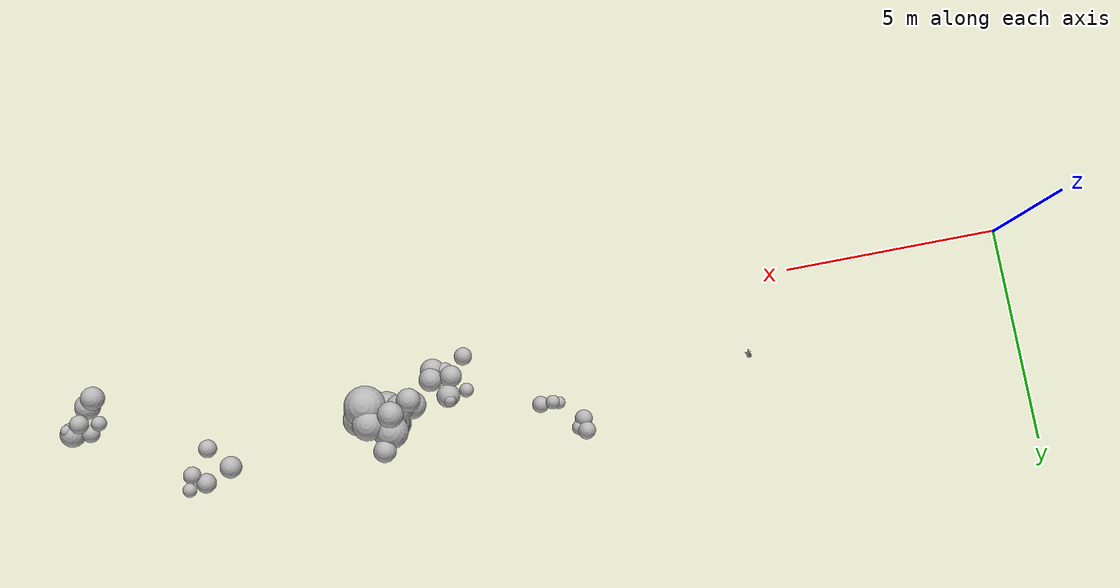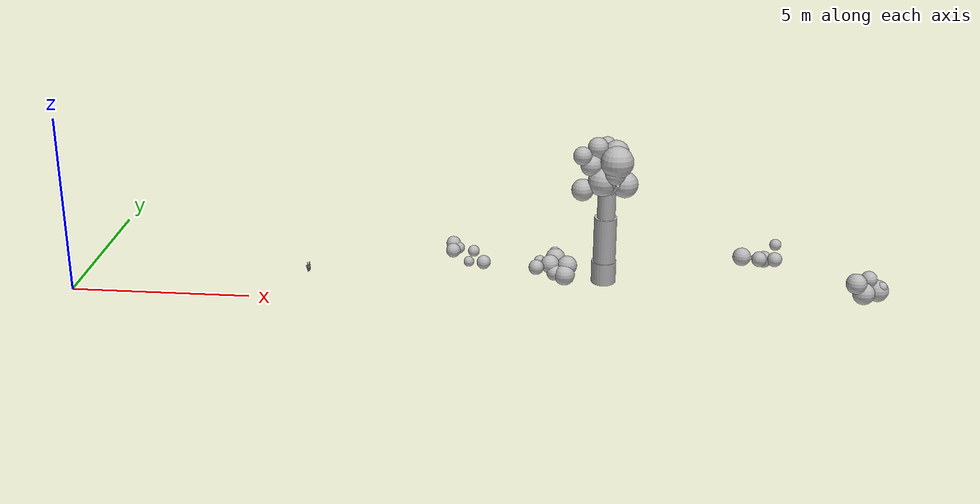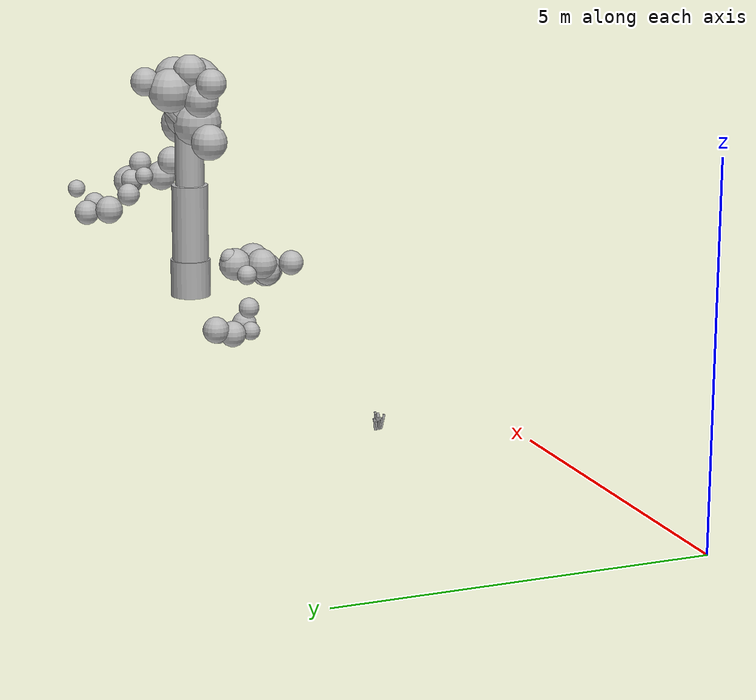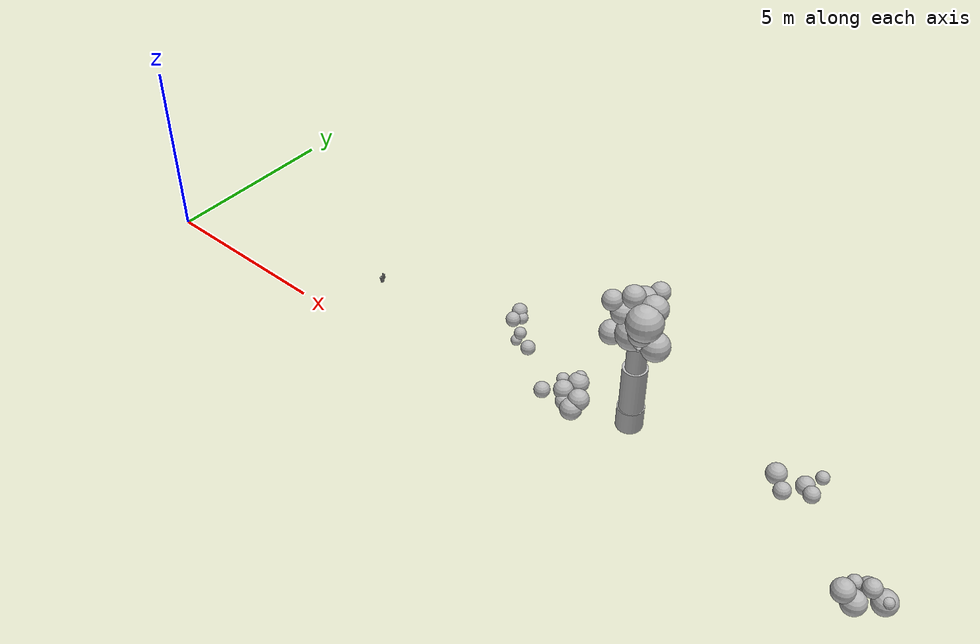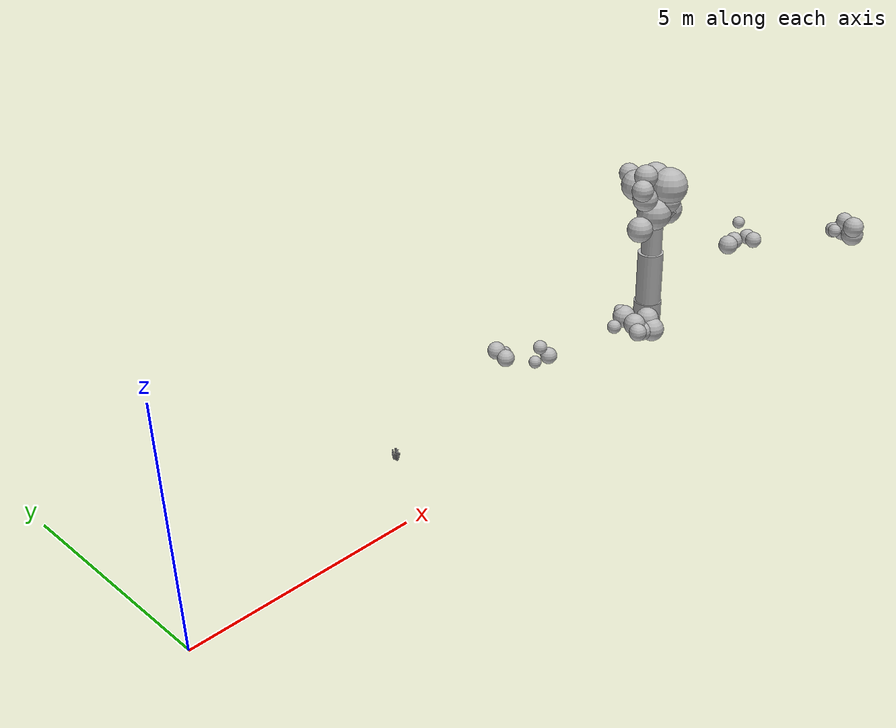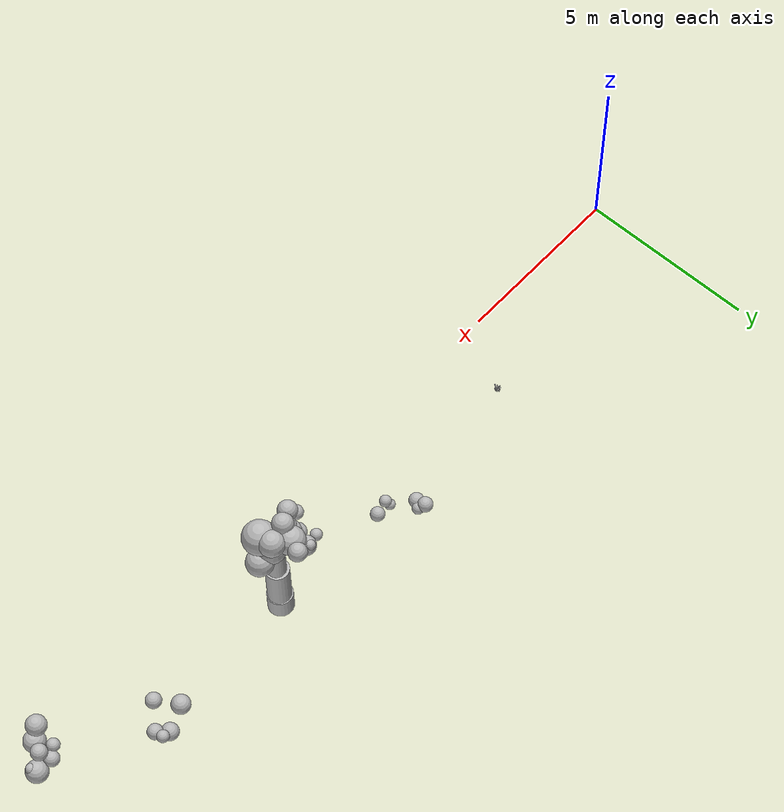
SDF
<sdf version="1.6">
 <world name="default">
  <model name="bush_18">
   <static>true</static>
   <pose>14.7406 1.8551 0 0 0 0</pose>
   <link name="trunk">
    <pose>0 0 1.5000 0 0 0</pose>
    <collision name="trunk_c">
     <geometry><cylinder><radius>0.3500</radius><length>3.0000</length></cylinder></geometry>
    </collision>
   </link>
   <link name="trunk_v0">
    <pose>0.0011 -0.0007 0.3100 0 0 0</pose>
    <visual name="trunk_v0_v">
     <geometry><cylinder><radius>0.3448</radius><length>0.6448</length></cylinder></geometry>
     <material>
      <script>
       <uri>model://bushfire/materials/scripts</uri>
       <uri>model://bushfire/materials/textures</uri>
       <name>Bushfire/CharBark</name>
      </script>
     </material>
    </visual>
   </link>
   <link name="trunk_v1">
    <pose>0.0080 -0.0047 1.2700 0 0 0</pose>
    <visual name="trunk_v1_v">
     <geometry><cylinder><radius>0.3150</radius><length>1.3520</length></cylinder></geometry>
     <material>
      <script>
       <uri>model://bushfire/materials/scripts</uri>
       <uri>model://bushfire/materials/textures</uri>
       <name>Bushfire/BarkSmooth</name>
      </script>
     </material>
    </visual>
   </link>
   <link name="trunk_v2">
    <pose>0.0203 -0.0120 2.4600 0 0 0</pose>
    <visual name="trunk_v2_v">
     <geometry><cylinder><radius>0.2520</radius><length>1.1232</length></cylinder></geometry>
     <material>
      <script>
       <uri>model://bushfire/materials/scripts</uri>
       <uri>model://bushfire/materials/textures</uri>
       <name>Bushfire/BarkSmooth</name>
      </script>
     </material>
    </visual>
   </link>
   <link name="branch0">
    <pose>0.1504 -0.2131 2.7496 0 0.7136 5.3271</pose>
    <visual name="branch0_v">
     <geometry><cylinder><radius>0.0507</radius><length>0.7969</length></cylinder></geometry>
     <material>
      <script>
       <uri>model://bushfire/materials/scripts</uri>
       <uri>model://bushfire/materials/textures</uri>
       <name>Bushfire/BarkSmooth</name>
      </script>
     </material>
    </visual>
   </link>
   <link name="branch1">
    <pose>0.3432 0.0026 2.7562 0 0.9896 6.2909</pose>
    <visual name="branch1_v">
     <geometry><cylinder><radius>0.0400</radius><length>0.8213</length></cylinder></geometry>
     <material>
      <script>
       <uri>model://bushfire/materials/scripts</uri>
       <uri>model://bushfire/materials/textures</uri>
       <name>Bushfire/BarkSmooth</name>
      </script>
     </material>
    </visual>
   </link>
   <link name="branch2">
    <pose>-0.1122 0.2481 3.0792 0 0.7819 8.2786</pose>
    <visual name="branch2_v">
     <geometry><cylinder><radius>0.0503</radius><length>0.7729</length></cylinder></geometry>
     <material>
      <script>
       <uri>model://bushfire/materials/scripts</uri>
       <uri>model://bushfire/materials/textures</uri>
       <name>Bushfire/BarkSmooth</name>
      </script>
     </material>
    </visual>
   </link>
   <link name="branch3">
    <pose>-0.2385 -0.0498 2.7622 0 1.0063 9.6308</pose>
    <visual name="branch3_v">
     <geometry><cylinder><radius>0.0340</radius><length>0.5768</length></cylinder></geometry>
     <material>
      <script>
       <uri>model://bushfire/materials/scripts</uri>
       <uri>model://bushfire/materials/textures</uri>
       <name>Bushfire/BarkSmooth</name>
      </script>
     </material>
    </visual>
   </link>
   <link name="foliage0">
    <pose>0.1201 -0.0437 3.1649 0 0 0</pose>
    <visual name="foliage0_v">
     <geometry><sphere><radius>0.4239</radius></sphere></geometry>
     <material>
      <script>
       <uri>model://bushfire/materials/scripts</uri>
       <uri>model://bushfire/materials/textures</uri>
       <name>Bushfire/Foliage2</name>
      </script>
     </material>
    </visual>
   </link>
   <link name="foliage1">
    <pose>0.5037 -0.0432 2.9428 0 0 0</pose>
    <visual name="foliage1_v">
     <geometry><sphere><radius>0.3649</radius></sphere></geometry>
     <material>
      <script>
       <uri>model://bushfire/materials/scripts</uri>
       <uri>model://bushfire/materials/textures</uri>
       <name>Bushfire/Foliage2</name>
      </script>
     </material>
    </visual>
   </link>
   <link name="foliage2">
    <pose>-0.1835 0.3823 3.6397 0 0 0</pose>
    <visual name="foliage2_v">
     <geometry><sphere><radius>0.3778</radius></sphere></geometry>
     <material>
      <script>
       <uri>model://bushfire/materials/scripts</uri>
       <uri>model://bushfire/materials/textures</uri>
       <name>Bushfire/Foliage2</name>
      </script>
     </material>
    </visual>
   </link>
   <link name="foliage3">
    <pose>-0.6511 -0.1492 2.7924 0 0 0</pose>
    <visual name="foliage3_v">
     <geometry><sphere><radius>0.3087</radius></sphere></geometry>
     <material>
      <script>
       <uri>model://bushfire/materials/scripts</uri>
       <uri>model://bushfire/materials/textures</uri>
       <name>Bushfire/Foliage0</name>
      </script>
     </material>
    </visual>
   </link>
   <link name="foliage4">
    <pose>0.2680 -0.2303 3.6517 0 0 0</pose>
    <visual name="foliage4_v">
     <geometry><sphere><radius>0.4530</radius></sphere></geometry>
     <material>
      <script>
       <uri>model://bushfire/materials/scripts</uri>
       <uri>model://bushfire/materials/textures</uri>
       <name>Bushfire/Foliage1</name>
      </script>
     </material>
    </visual>
   </link>
   <link name="foliage5">
    <pose>0.2472 0.1643 3.8018 0 0 0</pose>
    <visual name="foliage5_v">
     <geometry><sphere><radius>0.3428</radius></sphere></geometry>
     <material>
      <script>
       <uri>model://bushfire/materials/scripts</uri>
       <uri>model://bushfire/materials/textures</uri>
       <name>Bushfire/Foliage2</name>
      </script>
     </material>
    </visual>
   </link>
   <link name="foliage6">
    <pose>-0.0073 0.7726 3.7870 0 0 0</pose>
    <visual name="foliage6_v">
     <geometry><sphere><radius>0.2453</radius></sphere></geometry>
     <material>
      <script>
       <uri>model://bushfire/materials/scripts</uri>
       <uri>model://bushfire/materials/textures</uri>
       <name>Bushfire/Foliage2</name>
      </script>
     </material>
    </visual>
   </link>
   <link name="foliage7">
    <pose>-0.6741 -0.1877 3.7956 0 0 0</pose>
    <visual name="foliage7_v">
     <geometry><sphere><radius>0.2587</radius></sphere></geometry>
     <material>
      <script>
       <uri>model://bushfire/materials/scripts</uri>
       <uri>model://bushfire/materials/textures</uri>
       <name>Bushfire/Foliage1</name>
      </script>
     </material>
    </visual>
   </link>
   <link name="foliage8">
    <pose>0.0270 0.0278 3.0860 0 0 0</pose>
    <visual name="foliage8_v">
     <geometry><sphere><radius>0.2529</radius></sphere></geometry>
     <material>
      <script>
       <uri>model://bushfire/materials/scripts</uri>
       <uri>model://bushfire/materials/textures</uri>
       <name>Bushfire/Foliage1</name>
      </script>
     </material>
    </visual>
   </link>
   <link name="foliage9">
    <pose>0.2157 -0.2806 3.3196 0 0 0</pose>
    <visual name="foliage9_v">
     <geometry><sphere><radius>0.2981</radius></sphere></geometry>
     <material>
      <script>
       <uri>model://bushfire/materials/scripts</uri>
       <uri>model://bushfire/materials/textures</uri>
       <name>Bushfire/Foliage1</name>
      </script>
     </material>
    </visual>
   </link>
   <link name="foliage10">
    <pose>-0.2627 0.0566 3.9698 0 0 0</pose>
    <visual name="foliage10_v">
     <geometry><sphere><radius>0.2811</radius></sphere></geometry>
     <material>
      <script>
       <uri>model://bushfire/materials/scripts</uri>
       <uri>model://bushfire/materials/textures</uri>
       <name>Bushfire/Foliage2</name>
      </script>
     </material>
    </visual>
   </link>
   <link name="foliage11">
    <pose>-0.4304 -0.0814 3.4949 0 0 0</pose>
    <visual name="foliage11_v">
     <geometry><sphere><radius>0.3008</radius></sphere></geometry>
     <material>
      <script>
       <uri>model://bushfire/materials/scripts</uri>
       <uri>model://bushfire/materials/textures</uri>
       <name>Bushfire/Foliage2</name>
      </script>
     </material>
    </visual>
   </link>
   <link name="foliage12">
    <pose>-0.1012 -0.1157 3.0447 0 0 0</pose>
    <visual name="foliage12_v">
     <geometry><sphere><radius>0.4181</radius></sphere></geometry>
     <material>
      <script>
       <uri>model://bushfire/materials/scripts</uri>
       <uri>model://bushfire/materials/textures</uri>
       <name>Bushfire/Foliage2</name>
      </script>
     </material>
    </visual>
   </link>
  </model>
  <model name="scrub">
   <static>true</static>
   <link name="scrub41_0">
    <pose>12.9604 1.4420 0.7146 0 0 0</pose>
    <visual name="scrub41_0_v">
     <geometry><sphere><radius>0.1660</radius></sphere></geometry>
     <material>
      <script>
       <uri>model://bushfire/materials/scripts</uri>
       <uri>model://bushfire/materials/textures</uri>
       <name>Bushfire/Foliage0</name>
      </script>
     </material>
    </visual>
   </link>
   <link name="scrub41_1">
    <pose>13.3917 0.9271 0.6246 0 0 0</pose>
    <visual name="scrub41_1_v">
     <geometry><sphere><radius>0.2222</radius></sphere></geometry>
     <material>
      <script>
       <uri>model://bushfire/materials/scripts</uri>
       <uri>model://bushfire/materials/textures</uri>
       <name>Bushfire/Foliage0</name>
      </script>
     </material>
    </visual>
   </link>
   <link name="scrub41_2">
    <pose>13.3692 1.6061 0.9323 0 0 0</pose>
    <visual name="scrub41_2_v">
     <geometry><sphere><radius>0.1561</radius></sphere></geometry>
     <material>
      <script>
       <uri>model://bushfire/materials/scripts</uri>
       <uri>model://bushfire/materials/textures</uri>
       <name>Bushfire/Foliage0</name>
      </script>
     </material>
    </visual>
   </link>
   <link name="scrub41_3">
    <pose>13.7293 1.0621 0.7868 0 0 0</pose>
    <visual name="scrub41_3_v">
     <geometry><sphere><radius>0.2743</radius></sphere></geometry>
     <material>
      <script>
       <uri>model://bushfire/materials/scripts</uri>
       <uri>model://bushfire/materials/textures</uri>
       <name>Bushfire/Foliage1</name>
      </script>
     </material>
    </visual>
   </link>
   <link name="scrub41_4">
    <pose>13.3899 1.5025 0.8108 0 0 0</pose>
    <visual name="scrub41_4_v">
     <geometry><sphere><radius>0.2712</radius></sphere></geometry>
     <material>
      <script>
       <uri>model://bushfire/materials/scripts</uri>
       <uri>model://bushfire/materials/textures</uri>
       <name>Bushfire/Foliage0</name>
      </script>
     </material>
    </visual>
   </link>
   <link name="scrub41_5">
    <pose>13.6659 0.8487 0.5979 0 0 0</pose>
    <visual name="scrub41_5_v">
     <geometry><sphere><radius>0.2850</radius></sphere></geometry>
     <material>
      <script>
       <uri>model://bushfire/materials/scripts</uri>
       <uri>model://bushfire/materials/textures</uri>
       <name>Bushfire/Foliage1</name>
      </script>
     </material>
    </visual>
   </link>
   <link name="scrub41_6">
    <pose>13.2588 1.0722 0.8116 0 0 0</pose>
    <visual name="scrub41_6_v">
     <geometry><sphere><radius>0.2569</radius></sphere></geometry>
     <material>
      <script>
       <uri>model://bushfire/materials/scripts</uri>
       <uri>model://bushfire/materials/textures</uri>
       <name>Bushfire/Foliage1</name>
      </script>
     </material>
    </visual>
   </link>
   <link name="scrub41_7">
    <pose>12.8944 0.6761 0.8796 0 0 0</pose>
    <visual name="scrub41_7_v">
     <geometry><sphere><radius>0.2076</radius></sphere></geometry>
     <material>
      <script>
       <uri>model://bushfire/materials/scripts</uri>
       <uri>model://bushfire/materials/textures</uri>
       <name>Bushfire/Foliage2</name>
      </script>
     </material>
    </visual>
   </link>
   <link name="scrub43_0">
    <pose>10.5580 2.7658 0.4443 0 0 0</pose>
    <visual name="scrub43_0_v">
     <geometry><sphere><radius>0.1666</radius></sphere></geometry>
     <material>
      <script>
       <uri>model://bushfire/materials/scripts</uri>
       <uri>model://bushfire/materials/textures</uri>
       <name>Bushfire/Foliage0</name>
      </script>
     </material>
    </visual>
   </link>
   <link name="scrub43_1">
    <pose>10.3962 2.8638 0.5427 0 0 0</pose>
    <visual name="scrub43_1_v">
     <geometry><sphere><radius>0.2081</radius></sphere></geometry>
     <material>
      <script>
       <uri>model://bushfire/materials/scripts</uri>
       <uri>model://bushfire/materials/textures</uri>
       <name>Bushfire/Foliage1</name>
      </script>
     </material>
    </visual>
   </link>
   <link name="scrub43_2">
    <pose>11.3360 2.0655 0.3395 0 0 0</pose>
    <visual name="scrub43_2_v">
     <geometry><sphere><radius>0.1970</radius></sphere></geometry>
     <material>
      <script>
       <uri>model://bushfire/materials/scripts</uri>
       <uri>model://bushfire/materials/textures</uri>
       <name>Bushfire/Foliage0</name>
      </script>
     </material>
    </visual>
   </link>
   <link name="scrub43_3">
    <pose>10.4140 2.5766 0.4465 0 0 0</pose>
    <visual name="scrub43_3_v">
     <geometry><sphere><radius>0.2059</radius></sphere></geometry>
     <material>
      <script>
       <uri>model://bushfire/materials/scripts</uri>
       <uri>model://bushfire/materials/textures</uri>
       <name>Bushfire/Foliage0</name>
      </script>
     </material>
    </visual>
   </link>
   <link name="scrub43_4">
    <pose>10.9100 2.1033 0.3266 0 0 0</pose>
    <visual name="scrub43_4_v">
     <geometry><sphere><radius>0.1479</radius></sphere></geometry>
     <material>
      <script>
       <uri>model://bushfire/materials/scripts</uri>
       <uri>model://bushfire/materials/textures</uri>
       <name>Bushfire/Foliage0</name>
      </script>
     </material>
    </visual>
   </link>
   <link name="scrub43_5">
    <pose>11.0535 2.0822 0.6709 0 0 0</pose>
    <visual name="scrub43_5_v">
     <geometry><sphere><radius>0.1635</radius></sphere></geometry>
     <material>
      <script>
       <uri>model://bushfire/materials/scripts</uri>
       <uri>model://bushfire/materials/textures</uri>
       <name>Bushfire/Foliage0</name>
      </script>
     </material>
    </visual>
   </link>
   <link name="scrub47_0">
    <pose>19.5477 2.5419 0.9905 0 0 0</pose>
    <visual name="scrub47_0_v">
     <geometry><sphere><radius>0.1639</radius></sphere></geometry>
     <material>
      <script>
       <uri>model://bushfire/materials/scripts</uri>
       <uri>model://bushfire/materials/textures</uri>
       <name>Bushfire/Foliage1</name>
      </script>
     </material>
    </visual>
   </link>
   <link name="scrub47_1">
    <pose>19.5133 2.2040 0.6857 0 0 0</pose>
    <visual name="scrub47_1_v">
     <geometry><sphere><radius>0.2059</radius></sphere></geometry>
     <material>
      <script>
       <uri>model://bushfire/materials/scripts</uri>
       <uri>model://bushfire/materials/textures</uri>
       <name>Bushfire/Foliage0</name>
      </script>
     </material>
    </visual>
   </link>
   <link name="scrub47_2">
    <pose>18.5958 2.1848 0.7451 0 0 0</pose>
    <visual name="scrub47_2_v">
     <geometry><sphere><radius>0.2554</radius></sphere></geometry>
     <material>
      <script>
       <uri>model://bushfire/materials/scripts</uri>
       <uri>model://bushfire/materials/textures</uri>
       <name>Bushfire/Foliage1</name>
      </script>
     </material>
    </visual>
   </link>
   <link name="scrub47_3">
    <pose>19.0131 1.6790 0.9152 0 0 0</pose>
    <visual name="scrub47_3_v">
     <geometry><sphere><radius>0.2110</radius></sphere></geometry>
     <material>
      <script>
       <uri>model://bushfire/materials/scripts</uri>
       <uri>model://bushfire/materials/textures</uri>
       <name>Bushfire/Foliage1</name>
      </script>
     </material>
    </visual>
   </link>
   <link name="scrub47_4">
    <pose>19.2404 2.4343 0.5824 0 0 0</pose>
    <visual name="scrub47_4_v">
     <geometry><sphere><radius>0.2312</radius></sphere></geometry>
     <material>
      <script>
       <uri>model://bushfire/materials/scripts</uri>
       <uri>model://bushfire/materials/textures</uri>
       <name>Bushfire/Foliage1</name>
      </script>
     </material>
    </visual>
   </link>
   <link name="scrub73_0">
    <pose>21.6311 0.2010 0.6806 0 0 0</pose>
    <visual name="scrub73_0_v">
     <geometry><sphere><radius>0.2951</radius></sphere></geometry>
     <material>
      <script>
       <uri>model://bushfire/materials/scripts</uri>
       <uri>model://bushfire/materials/textures</uri>
       <name>Bushfire/Foliage0</name>
      </script>
     </material>
    </visual>
   </link>
   <link name="scrub73_1">
    <pose>22.1857 0.6651 0.6743 0 0 0</pose>
    <visual name="scrub73_1_v">
     <geometry><sphere><radius>0.1479</radius></sphere></geometry>
     <material>
      <script>
       <uri>model://bushfire/materials/scripts</uri>
       <uri>model://bushfire/materials/textures</uri>
       <name>Bushfire/Foliage2</name>
      </script>
     </material>
    </visual>
   </link>
   <link name="scrub73_2">
    <pose>21.8108 0.5879 0.9322 0 0 0</pose>
    <visual name="scrub73_2_v">
     <geometry><sphere><radius>0.2195</radius></sphere></geometry>
     <material>
      <script>
       <uri>model://bushfire/materials/scripts</uri>
       <uri>model://bushfire/materials/textures</uri>
       <name>Bushfire/Foliage0</name>
      </script>
     </material>
    </visual>
   </link>
   <link name="scrub73_3">
    <pose>21.6608 0.8181 0.6318 0 0 0</pose>
    <visual name="scrub73_3_v">
     <geometry><sphere><radius>0.2094</radius></sphere></geometry>
     <material>
      <script>
       <uri>model://bushfire/materials/scripts</uri>
       <uri>model://bushfire/materials/textures</uri>
       <name>Bushfire/Foliage2</name>
      </script>
     </material>
    </visual>
   </link>
   <link name="scrub73_4">
    <pose>21.4138 0.6316 0.7416 0 0 0</pose>
    <visual name="scrub73_4_v">
     <geometry><sphere><radius>0.1761</radius></sphere></geometry>
     <material>
      <script>
       <uri>model://bushfire/materials/scripts</uri>
       <uri>model://bushfire/materials/textures</uri>
       <name>Bushfire/Foliage1</name>
      </script>
     </material>
    </visual>
   </link>
   <link name="scrub73_5">
    <pose>22.1033 0.7520 0.5218 0 0 0</pose>
    <visual name="scrub73_5_v">
     <geometry><sphere><radius>0.2969</radius></sphere></geometry>
     <material>
      <script>
       <uri>model://bushfire/materials/scripts</uri>
       <uri>model://bushfire/materials/textures</uri>
       <name>Bushfire/Foliage1</name>
      </script>
     </material>
    </visual>
   </link>
   <link name="scrub73_6">
    <pose>21.3886 0.0675 1.0228 0 0 0</pose>
    <visual name="scrub73_6_v">
     <geometry><sphere><radius>0.2744</radius></sphere></geometry>
     <material>
      <script>
       <uri>model://bushfire/materials/scripts</uri>
       <uri>model://bushfire/materials/textures</uri>
       <name>Bushfire/Foliage0</name>
      </script>
     </material>
    </visual>
   </link>
  </model>
  <model name="tussocks">
   <static>true</static>
   <link name="tuft142_0">
    <pose>6.3256 1.8235 0.0760 0 0.4114 1.1301</pose>
    <visual name="tuft142_0_v">
     <geometry><cylinder><radius>0.0191</radius><length>0.1653</length></cylinder></geometry>
     <material>
      <script>
       <uri>model://bushfire/materials/scripts</uri>
       <uri>model://bushfire/materials/textures</uri>
       <name>Bushfire/Foliage2</name>
      </script>
     </material>
    </visual>
   </link>
   <link name="tuft142_1">
    <pose>6.2853 1.8570 0.0803 0 0.1274 1.9248</pose>
    <visual name="tuft142_1_v">
     <geometry><cylinder><radius>0.0188</radius><length>0.1745</length></cylinder></geometry>
     <material>
      <script>
       <uri>model://bushfire/materials/scripts</uri>
       <uri>model://bushfire/materials/textures</uri>
       <name>Bushfire/Foliage2</name>
      </script>
     </material>
    </visual>
   </link>
   <link name="tuft142_2">
    <pose>6.3171 1.7765 0.0811 0 0.1239 5.1915</pose>
    <visual name="tuft142_2_v">
     <geometry><cylinder><radius>0.0196</radius><length>0.1764</length></cylinder></geometry>
     <material>
      <script>
       <uri>model://bushfire/materials/scripts</uri>
       <uri>model://bushfire/materials/textures</uri>
       <name>Bushfire/Tussock</name>
      </script>
     </material>
    </visual>
   </link>
   <link name="tuft142_3">
    <pose>6.2753 1.7985 0.0727 0 0.3299 2.9086</pose>
    <visual name="tuft142_3_v">
     <geometry><cylinder><radius>0.0142</radius><length>0.1580</length></cylinder></geometry>
     <material>
      <script>
       <uri>model://bushfire/materials/scripts</uri>
       <uri>model://bushfire/materials/textures</uri>
       <name>Bushfire/Foliage2</name>
      </script>
     </material>
    </visual>
   </link>
   <link name="tuft142_4">
    <pose>6.2822 1.8290 0.1133 0 0.2289 2.1938</pose>
    <visual name="tuft142_4_v">
     <geometry><cylinder><radius>0.0112</radius><length>0.2464</length></cylinder></geometry>
     <material>
      <script>
       <uri>model://bushfire/materials/scripts</uri>
       <uri>model://bushfire/materials/textures</uri>
       <name>Bushfire/Foliage2</name>
      </script>
     </material>
    </visual>
   </link>
   <link name="tuft142_5">
    <pose>6.3049 1.7289 0.0999 0 0.2153 4.6298</pose>
    <visual name="tuft142_5_v">
     <geometry><cylinder><radius>0.0172</radius><length>0.2173</length></cylinder></geometry>
     <material>
      <script>
       <uri>model://bushfire/materials/scripts</uri>
       <uri>model://bushfire/materials/textures</uri>
       <name>Bushfire/Foliage2</name>
      </script>
     </material>
    </visual>
   </link>
   <link name="tuft142_6">
    <pose>6.2795 1.7660 0.0808 0 0.2204 3.8145</pose>
    <visual name="tuft142_6_v">
     <geometry><cylinder><radius>0.0128</radius><length>0.1756</length></cylinder></geometry>
     <material>
      <script>
       <uri>model://bushfire/materials/scripts</uri>
       <uri>model://bushfire/materials/textures</uri>
       <name>Bushfire/Foliage2</name>
      </script>
     </material>
    </visual>
   </link>
   <link name="tuft142_7">
    <pose>6.3164 1.7953 0.0787 0 0.2151 0.6628</pose>
    <visual name="tuft142_7_v">
     <geometry><cylinder><radius>0.0198</radius><length>0.1711</length></cylinder></geometry>
     <material>
      <script>
       <uri>model://bushfire/materials/scripts</uri>
       <uri>model://bushfire/materials/textures</uri>
       <name>Bushfire/Foliage2</name>
      </script>
     </material>
    </visual>
   </link>
   <link name="tuft142_8">
    <pose>6.3560 1.7633 0.0654 0 0.2721 5.7534</pose>
    <visual name="tuft142_8_v">
     <geometry><cylinder><radius>0.0147</radius><length>0.1422</length></cylinder></geometry>
     <material>
      <script>
       <uri>model://bushfire/materials/scripts</uri>
       <uri>model://bushfire/materials/textures</uri>
       <name>Bushfire/Foliage2</name>
      </script>
     </material>
    </visual>
   </link>
   <link name="tuft142_9">
    <pose>6.3313 1.8223 0.1181 0 0.1129 0.9830</pose>
    <visual name="tuft142_9_v">
     <geometry><cylinder><radius>0.0160</radius><length>0.2567</length></cylinder></geometry>
     <material>
      <script>
       <uri>model://bushfire/materials/scripts</uri>
       <uri>model://bushfire/materials/textures</uri>
       <name>Bushfire/Tussock</name>
      </script>
     </material>
    </visual>
   </link>
   <link name="tuft142_10">
    <pose>6.3213 1.7884 0.1112 0 0.2191 6.1132</pose>
    <visual name="tuft142_10_v">
     <geometry><cylinder><radius>0.0187</radius><length>0.2418</length></cylinder></geometry>
     <material>
      <script>
       <uri>model://bushfire/materials/scripts</uri>
       <uri>model://bushfire/materials/textures</uri>
       <name>Bushfire/Foliage2</name>
      </script>
     </material>
    </visual>
   </link>
   <link name="tuft142_11">
    <pose>6.2746 1.8402 0.0631 0 0.2567 2.1880</pose>
    <visual name="tuft142_11_v">
     <geometry><cylinder><radius>0.0168</radius><length>0.1371</length></cylinder></geometry>
     <material>
      <script>
       <uri>model://bushfire/materials/scripts</uri>
       <uri>model://bushfire/materials/textures</uri>
       <name>Bushfire/Foliage2</name>
      </script>
     </material>
    </visual>
   </link>
  </model>
 </world>
</sdf>
